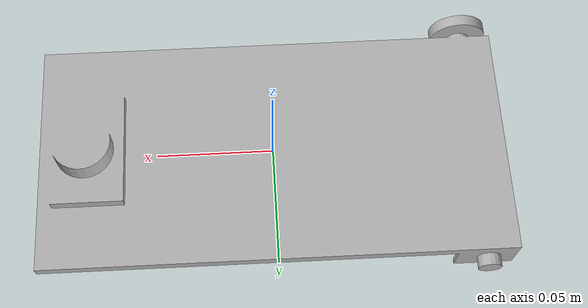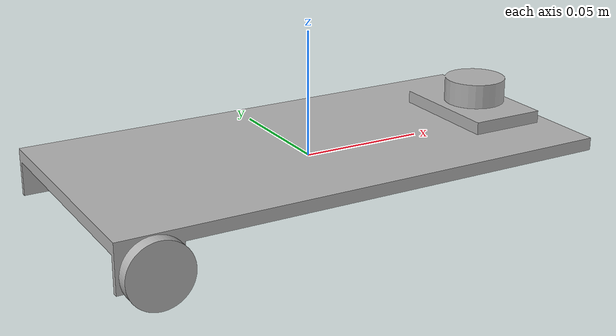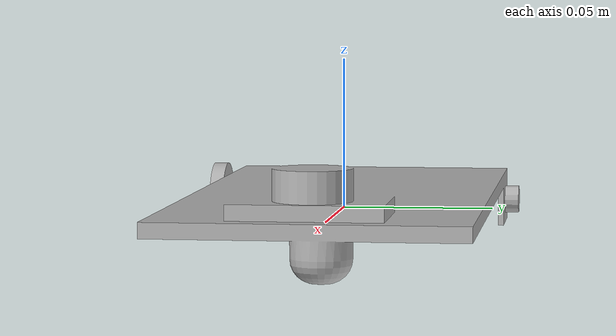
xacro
<?xml version="1.0" ?>
<robot name="AUTODESK" xmlns:xacro="http://www.ros.org/wiki/xacro">

<xacro:include filename="$(find AUTODESK_description)/urdf/materials.xacro" />
<xacro:include filename="$(find AUTODESK_description)/urdf/AUTODESK.trans" />
<xacro:include filename="$(find AUTODESK_description)/urdf/AUTODESK.gazebo" />
<link name="base_link">
  <inertial>
    <origin xyz="-0.030211299005952052 -4.8213785126134076e-05 0.021086757195702317" rpy="0 0 0"/>
    <mass value="0.9367998255029805"/>
    <inertia ixx="0.000727" iyy="0.003437" izz="0.004132" ixy="3e-06" iyz="0.0" ixz="-4.8e-05"/>
  </inertial>
  <visual>
    <origin xyz="0 0 0" rpy="0 0 0"/>
    <geometry>
      <mesh filename="package://AUTODESK_description/meshes/base_link.stl" scale="0.001 0.001 0.001"/>
    </geometry>
    <material name="silver"/>
  </visual>
  <collision>
    <origin xyz="0 0 0" rpy="0 0 0"/>
    <geometry>
      <mesh filename="package://AUTODESK_description/meshes/base_link.stl" scale="0.001 0.001 0.001"/>
    </geometry>
  </collision>
</link>

<link name="LEFT_WHEEL_1">
  <inertial>
    <origin xyz="-3.4048127428576436e-07 -0.0024999999999985867 2.6465302691708326e-07" rpy="0 0 0"/>
    <mass value="0.019266798695843648"/>
    <inertia ixx="1e-06" iyy="2e-06" izz="1e-06" ixy="0.0" iyz="0.0" ixz="-0.0"/>
  </inertial>
  <visual>
    <origin xyz="0.127185 0.055 -0.012869" rpy="0 0 0"/>
    <geometry>
      <mesh filename="package://AUTODESK_description/meshes/LEFT_WHEEL_1.stl" scale="0.001 0.001 0.001"/>
    </geometry>
    <material name="silver"/>
  </visual>
  <collision>
    <origin xyz="0.127185 0.055 -0.012869" rpy="0 0 0"/>
    <geometry>
      <mesh filename="package://AUTODESK_description/meshes/LEFT_WHEEL_1.stl" scale="0.001 0.001 0.001"/>
    </geometry>
  </collision>
</link>

<link name="RIGHT_WHEEL2_1">
  <inertial>
    <origin xyz="-1.9003350579249734e-07 0.0025000000000011194 -3.596800815051232e-07" rpy="0 0 0"/>
    <mass value="0.019266798695843648"/>
    <inertia ixx="1e-06" iyy="2e-06" izz="1e-06" ixy="0.0" iyz="0.0" ixz="-0.0"/>
  </inertial>
  <visual>
    <origin xyz="0.127568 -0.055 -0.012919" rpy="0 0 0"/>
    <geometry>
      <mesh filename="package://AUTODESK_description/meshes/RIGHT_WHEEL2_1.stl" scale="0.001 0.001 0.001"/>
    </geometry>
    <material name="silver"/>
  </visual>
  <collision>
    <origin xyz="0.127568 -0.055 -0.012919" rpy="0 0 0"/>
    <geometry>
      <mesh filename="package://AUTODESK_description/meshes/RIGHT_WHEEL2_1.stl" scale="0.001 0.001 0.001"/>
    </geometry>
  </collision>
</link>

<joint name="Rev1" type="continuous">
  <origin xyz="-0.127185 -0.055 0.012869" rpy="0 0 0"/>
  <parent link="base_link"/>
  <child link="LEFT_WHEEL_1"/>
  <axis xyz="0.0 1.0 0.0"/>
</joint>

<joint name="Rev2" type="continuous">
  <origin xyz="-0.127568 0.055 0.012919" rpy="0 0 0"/>
  <parent link="base_link"/>
  <child link="RIGHT_WHEEL2_1"/>
  <axis xyz="0.0 1.0 0.0"/>
</joint>

</robot>

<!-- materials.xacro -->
<robot name="AUTODESK" xmlns:xacro="http://www.ros.org/wiki/xacro" >

<material name="silver">
  <color rgba="0.700 0.700 0.700 1.000"/>
</material>

</robot>
